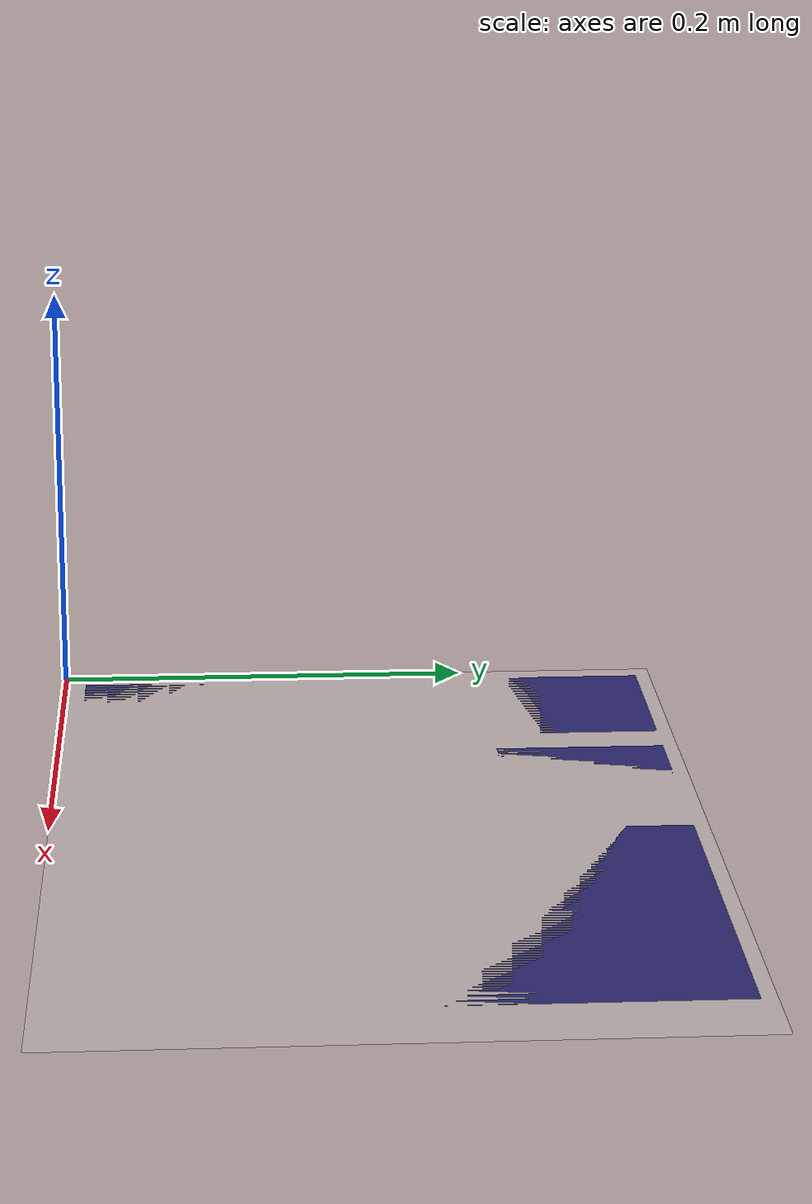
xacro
<?xml version="1.0" encoding="utf-8"?>
<robot xmlns:xacro="http://www.ros.org/wiki/xacro" name="calibration_2a">

  <!-- upper left corner of grid  -->
  <link name="calibration_2a_base_link">
    <visual>
     <origin xyz ="0.21 0.1485 0" rpy ="0 0 0"/>
     <geometry>
       <box size="0.42 0.297 1e-3" />
     </geometry>
     <material name="TransparentWhite">
       <color rgba="1 1 1 0.2"/>
     </material>
   </visual>
  </link>

  <!-- aruco 913 -->
  <link name="aruco_913">
    <visual>
     <geometry>
       <box size="0.18 0.18 0.001" />
     </geometry>
     <material name="DarkBlue">
       <color rgba="0.1 0.1 0.5 0.8"/>
     </material>
   </visual>
  </link>

  <!-- aruco 914   -->
  <link name="aruco_914">
    <visual>
     <geometry>
       <box size="0.08 0.08 0.001" />
     </geometry>
     <material name="DarkBlue">
       <color rgba="0.1 0.1 0.5 0.8"/>
     </material>
   </visual>
  </link>

  <!-- aruco 915   -->
  <link name="aruco_915">
    <visual>
     <geometry>
       <box size="0.08 0.08 0.001" />
     </geometry>
     <material name="DarkBlue">
       <color rgba="0.1 0.1 0.5 0.8"/>
     </material>
   </visual>
  </link>

  <!-- aruco 916   -->
  <link name="aruco_916">
    <visual>
     <geometry>
       <box size="0.08 0.08 0.001" />
     </geometry>
     <material name="DarkBlue">
       <color rgba="0.1 0.1 0.5 0.8"/>
     </material>
   </visual>
  </link>

  <!-- aruco 917   -->
  <link name="aruco_917">
    <visual>
     <geometry>
       <box size="0.08 0.08 0.001" />
     </geometry>
     <material name="DarkBlue">
       <color rgba="0.1 0.1 0.5 0.8"/>
     </material>
   </visual>
  </link>

  <!-- aruco 918   -->
  <link name="aruco_918">
    <visual>
     <geometry>
       <box size="0.18 0.18 0.001" />
     </geometry>
     <material name="DarkBlue">
       <color rgba="0.1 0.1 0.5 0.8"/>
     </material>
   </visual>
  </link>

  <!-- position aruco markers -->
  <joint name="base_link-aruco_913" type="fixed">
    <origin rpy="0 0 0" xyz="0.1 0.1 0"/>
    <parent link="calibration_2a_base_link"/>
    <child link="aruco_913"/>
  </joint>

  <joint name="base_link-aruco_914" type="fixed">
    <origin rpy="0 0 0" xyz="0.05 0.25 0"/>
    <parent link="calibration_2a_base_link"/>
    <child link="aruco_914"/>
  </joint>

  <joint name="base_link-aruco_915" type="fixed">
    <origin rpy="0 0 0" xyz="0.15 0.25 0"/>
    <parent link="calibration_2a_base_link"/>
    <child link="aruco_915"/>
  </joint>

  <joint name="base_link-aruco_916" type="fixed">
    <origin rpy="0 0 0" xyz="0.25 0.05 0"/>
    <parent link="calibration_2a_base_link"/>
    <child link="aruco_916"/>
  </joint>

  <joint name="base_link-aruco_917" type="fixed">
    <origin rpy="0 0 0" xyz="0.35 0.05 0"/>
    <parent link="calibration_2a_base_link"/>
    <child link="aruco_917"/>
  </joint>

  <joint name="base_link-aruco_918" type="fixed">
    <origin rpy="0 0 0" xyz="0.3 0.2 0"/>
    <parent link="calibration_2a_base_link"/>
    <child link="aruco_918"/>
  </joint>

</robot>
